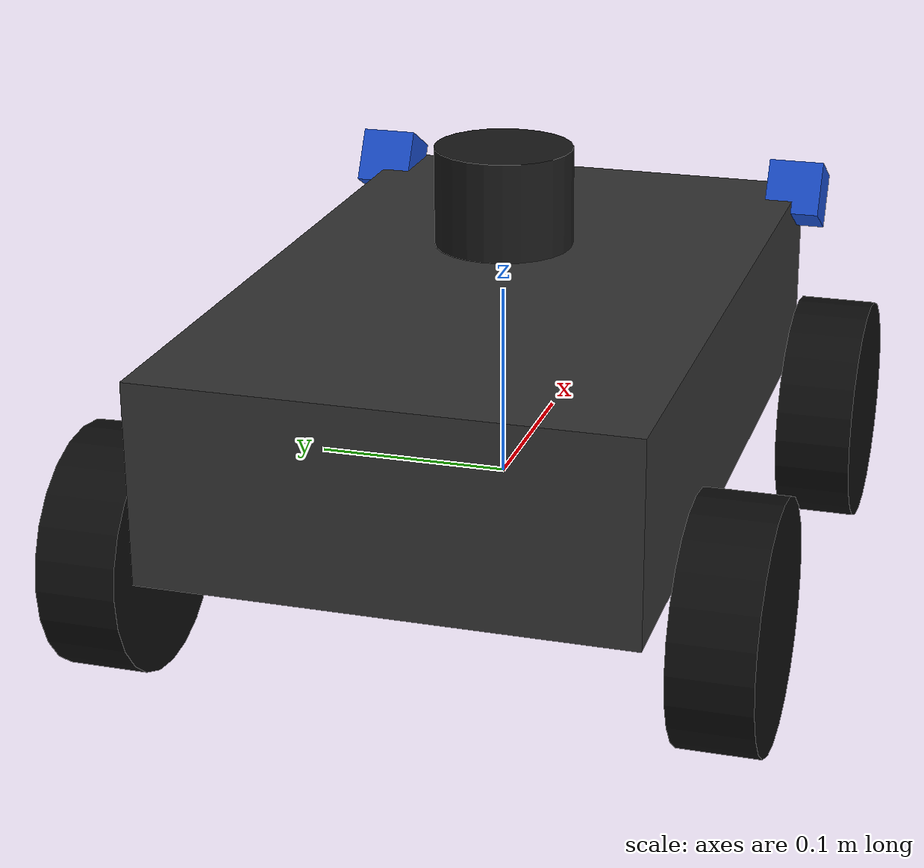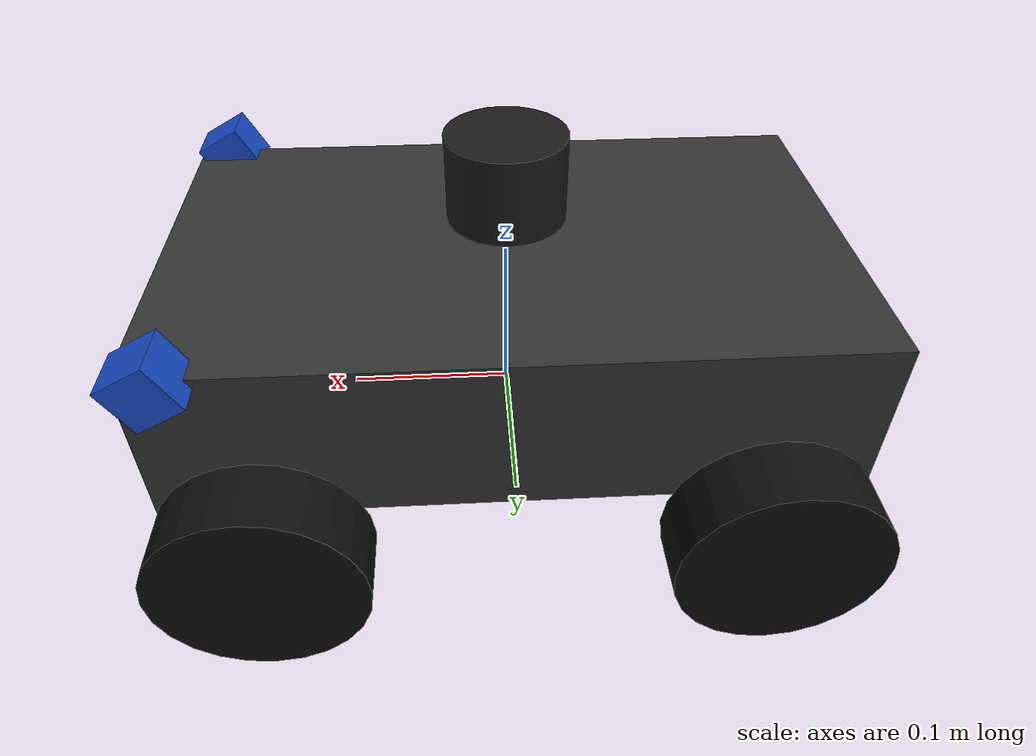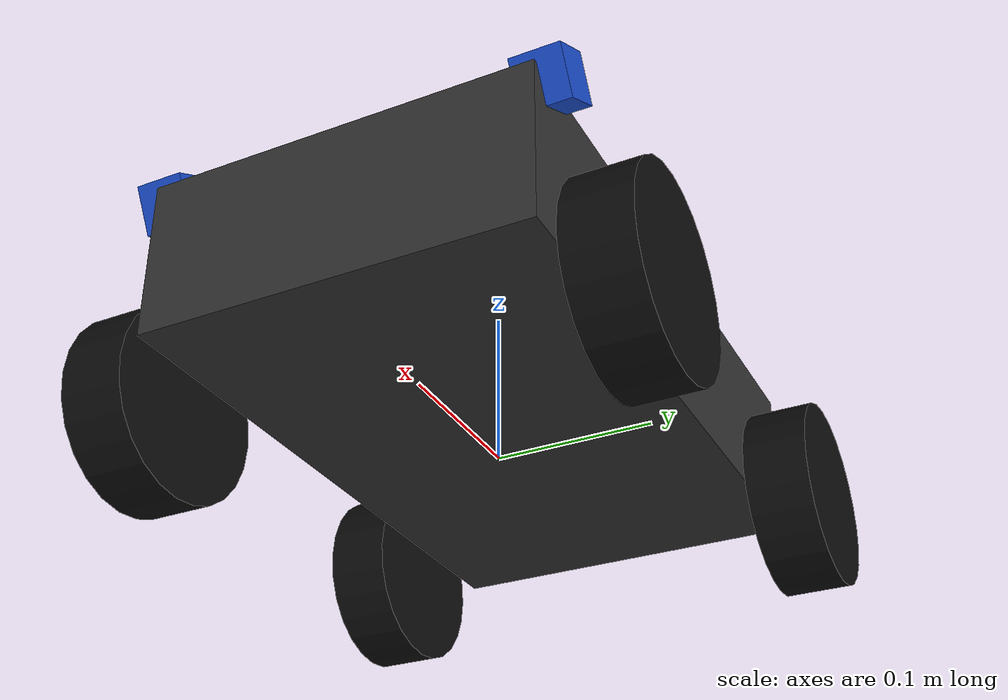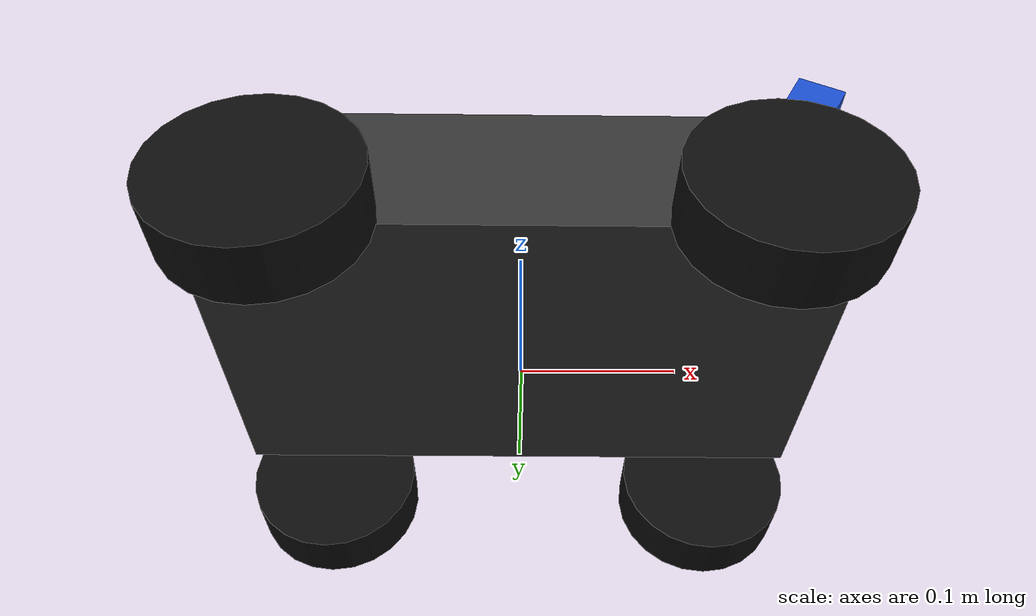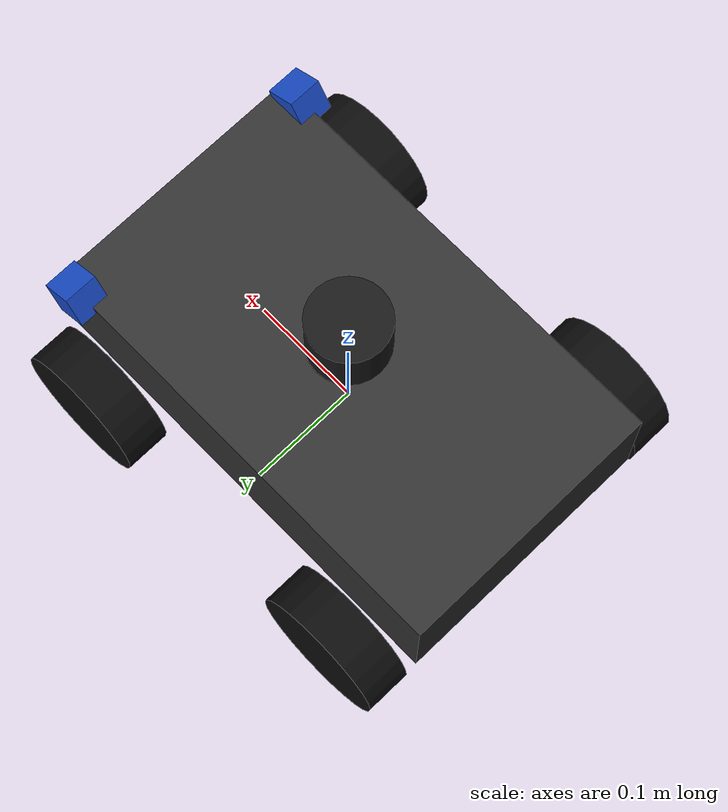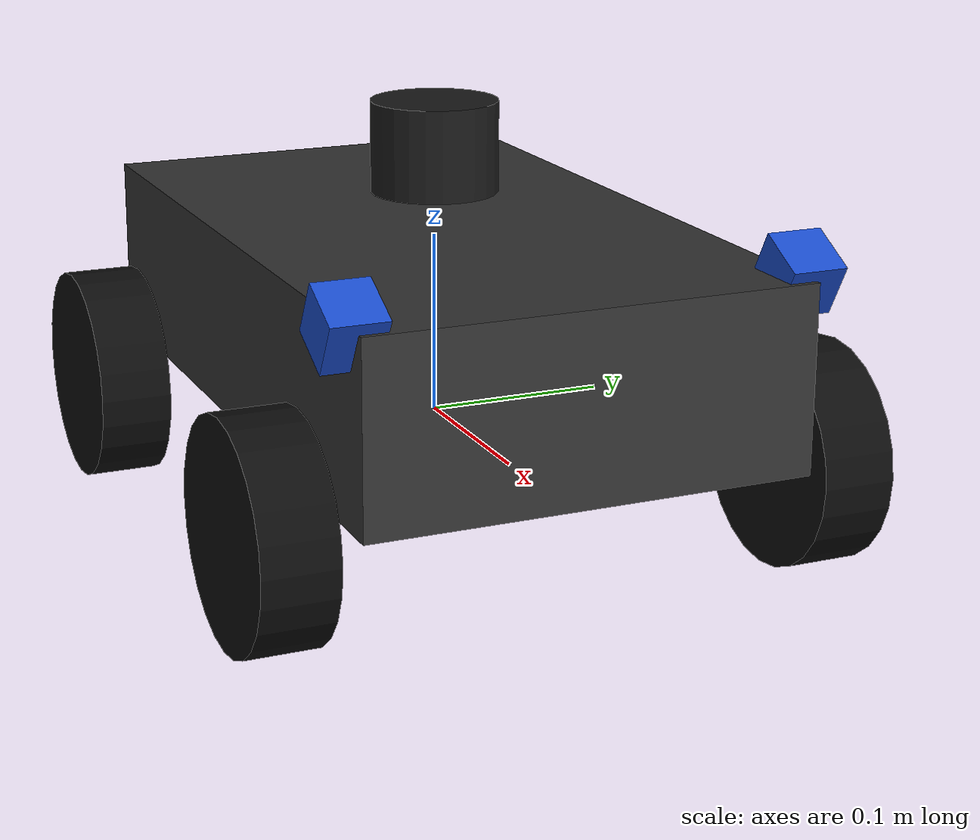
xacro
<?xml version="1.0"?>
<robot name="lane_car" xmlns:xacro="http://www.ros.org/wiki/xacro">

  <!-- ============================ PARAMETERS ============================ -->
  <xacro:property name="chassis_x" value="0.40"/>
  <xacro:property name="chassis_y" value="0.24"/>
  <xacro:property name="chassis_z" value="0.10"/>
  <xacro:property name="chassis_mass" value="4.0"/>
  <xacro:property name="ground_clearance" value="0.06"/>

  <xacro:property name="wheel_radius" value="0.06"/>
  <xacro:property name="wheel_width" value="0.04"/>
  <xacro:property name="wheel_mass" value="0.3"/>
  <xacro:property name="wheel_x_offset" value="0.14"/>
  <xacro:property name="wheel_y_offset" value="${chassis_y/2 + wheel_width/2 + 0.01}"/>

  <xacro:property name="camera_tilt" value="0.5"/>  <!-- rad, ~29 deg pitched down -->

  <!-- ============================ MATERIALS ============================ -->
  <material name="chassis_grey"><color rgba="0.2 0.2 0.2 1"/></material>
  <material name="wheel_black"><color rgba="0.05 0.05 0.05 1"/></material>
  <material name="lidar_dark"><color rgba="0.1 0.1 0.1 1"/></material>
  <material name="cam_blue"><color rgba="0.1 0.3 0.8 1"/></material>

  <!-- ============================ BASE / CHASSIS ============================ -->
  <link name="base_link"/>

  <joint name="base_to_chassis" type="fixed">
    <parent link="base_link"/>
    <child link="chassis_link"/>
    <origin xyz="0 0 ${ground_clearance}" rpy="0 0 0"/>
  </joint>

  <link name="chassis_link">
    <visual>
      <geometry><box size="${chassis_x} ${chassis_y} ${chassis_z}"/></geometry>
      <material name="chassis_grey"/>
    </visual>
    <collision>
      <geometry><box size="${chassis_x} ${chassis_y} ${chassis_z}"/></geometry>
    </collision>
    <inertial>
      <mass value="${chassis_mass}"/>
      <inertia ixx="0.05" ixy="0" ixz="0" iyy="0.08" iyz="0" izz="0.10"/>
    </inertial>
  </link>

  <!-- ============================ WHEEL MACRO ============================ -->
  <xacro:macro name="wheel" params="prefix x_pos y_pos">
    <link name="${prefix}_wheel_link">
      <visual>
        <origin xyz="0 0 0" rpy="1.5708 0 0"/>
        <geometry><cylinder radius="${wheel_radius}" length="${wheel_width}"/></geometry>
        <material name="wheel_black"/>
      </visual>
      <collision>
        <origin xyz="0 0 0" rpy="1.5708 0 0"/>
        <geometry><cylinder radius="${wheel_radius}" length="${wheel_width}"/></geometry>
      </collision>
      <inertial>
        <mass value="${wheel_mass}"/>
        <inertia ixx="0.001" ixy="0" ixz="0" iyy="0.001" iyz="0" izz="0.001"/>
      </inertial>
    </link>

    <joint name="${prefix}_wheel_joint" type="continuous">
      <parent link="chassis_link"/>
      <child link="${prefix}_wheel_link"/>
      <origin xyz="${x_pos} ${y_pos} ${-ground_clearance + wheel_radius*0}" rpy="0 0 0"/>
      <axis xyz="0 1 0"/>
    </joint>
  </xacro:macro>

  <xacro:wheel prefix="front_left"  x_pos="${wheel_x_offset}"  y_pos="${wheel_y_offset}"/>
  <xacro:wheel prefix="front_right" x_pos="${wheel_x_offset}"  y_pos="${-wheel_y_offset}"/>
  <xacro:wheel prefix="rear_left"   x_pos="${-wheel_x_offset}" y_pos="${wheel_y_offset}"/>
  <xacro:wheel prefix="rear_right"  x_pos="${-wheel_x_offset}" y_pos="${-wheel_y_offset}"/>

  <!-- ============================ LIDAR (top, center) ============================ -->
  <joint name="lidar_joint" type="fixed">
    <parent link="chassis_link"/>
    <child link="lidar_link"/>
    <origin xyz="0 0 ${chassis_z/2 + 0.04}" rpy="0 0 0"/>
  </joint>

  <link name="lidar_link">
    <visual>
      <geometry><cylinder radius="0.035" length="0.05"/></geometry>
      <material name="lidar_dark"/>
    </visual>
    <collision>
      <geometry><cylinder radius="0.035" length="0.05"/></geometry>
    </collision>
    <inertial>
      <mass value="0.15"/>
      <inertia ixx="0.0001" ixy="0" ixz="0" iyy="0.0001" iyz="0" izz="0.0001"/>
    </inertial>
  </link>

  <!-- ============================ CAMERA MACRO ============================ -->
  <xacro:macro name="side_camera" params="prefix y_pos yaw">
    <joint name="${prefix}_camera_joint" type="fixed">
      <parent link="chassis_link"/>
      <child link="${prefix}_camera_link"/>
      <origin xyz="${chassis_x/2 - 0.02} ${y_pos} ${chassis_z/2}"
              rpy="0 ${camera_tilt} ${yaw}"/>
    </joint>

    <link name="${prefix}_camera_link">
      <visual>
        <geometry><box size="0.03 0.03 0.03"/></geometry>
        <material name="cam_blue"/>
      </visual>
      <collision>
        <geometry><box size="0.03 0.03 0.03"/></geometry>
      </collision>
      <inertial>
        <mass value="0.05"/>
        <inertia ixx="0.00001" ixy="0" ixz="0" iyy="0.00001" iyz="0" izz="0.00001"/>
      </inertial>
    </link>

    <joint name="${prefix}_camera_optical_joint" type="fixed">
      <parent link="${prefix}_camera_link"/>
      <child link="${prefix}_camera_link_optical"/>
      <origin xyz="0 0 0" rpy="${-1.5708} 0 ${-1.5708}"/>
    </joint>
    <link name="${prefix}_camera_link_optical"/>
  </xacro:macro>

  <!-- yaw=0 -> facing forward along the chassis x-axis, tilted down.
       Left camera on +y, right camera on -y side. -->
  <xacro:side_camera prefix="left_side"  y_pos="${chassis_y/2}"  yaw="0"/>
  <xacro:side_camera prefix="right_side" y_pos="${-chassis_y/2}" yaw="0"/>

  <!-- ============================ GAZEBO HARMONIC: DIFF DRIVE ============================ -->
  <!-- Publishes/subscribes on gz-transport topics (gz.msgs.Twist / gz.msgs.Odometry),
       NOT directly on ROS2 topics. The launch file bridges these via ros_gz_bridge. -->
  <gazebo>
    <plugin filename="gz-sim-diff-drive-system" name="gz::sim::systems::DiffDrive">
      <left_joint>front_left_wheel_joint</left_joint>
      <left_joint>rear_left_wheel_joint</left_joint>
      <right_joint>front_right_wheel_joint</right_joint>
      <right_joint>rear_right_wheel_joint</right_joint>
      <wheel_separation>${2*wheel_y_offset}</wheel_separation>
      <wheel_radius>${wheel_radius}</wheel_radius>
      <max_linear_acceleration>2.0</max_linear_acceleration>
      <topic>cmd_vel</topic>
      <odom_topic>odom</odom_topic>
      <tf_topic>tf</tf_topic>
      <frame_id>odom</frame_id>
      <child_frame_id>base_link</child_frame_id>
      <odom_publish_frequency>30</odom_publish_frequency>
    </plugin>
  </gazebo>

  <!-- ============================ GAZEBO HARMONIC: LIDAR ============================ -->
  <gazebo reference="lidar_link">
    <sensor name="lidar" type="gpu_lidar">
      <pose>0 0 0 0 0 0</pose>
      <topic>scan</topic>
      <update_rate>10</update_rate>
      <lidar>
        <scan>
          <horizontal>
            <samples>360</samples>
            <resolution>1.0</resolution>
            <min_angle>-3.14159</min_angle>
            <max_angle>3.14159</max_angle>
          </horizontal>
        </scan>
        <range>
          <min>0.12</min>
          <max>12.0</max>
          <resolution>0.01</resolution>
        </range>
      </lidar>
      <always_on>true</always_on>
      <visualize>false</visualize>
    </sensor>
  </gazebo>

  <!-- ============================ GAZEBO HARMONIC: CAMERAS ============================ -->
  <xacro:macro name="gazebo_camera" params="prefix topic">
    <gazebo reference="${prefix}_camera_link">
      <sensor name="${prefix}_camera" type="camera">
        <pose>0 0 0 0 0 0</pose>
        <topic>${topic}</topic>
        <update_rate>15</update_rate>
        <camera>
          <horizontal_fov>1.3</horizontal_fov>
          <image>
            <width>640</width>
            <height>480</height>
            <format>R8G8B8</format>
          </image>
          <clip>
            <near>0.05</near>
            <far>15</far>
          </clip>
          <optical_frame_id>${prefix}_camera_link_optical</optical_frame_id>
        </camera>
        <always_on>true</always_on>
        <visualize>false</visualize>
      </sensor>
    </gazebo>
  </xacro:macro>

  <xacro:gazebo_camera prefix="left_side"  topic="lcamera/image_raw"/>
  <xacro:gazebo_camera prefix="right_side" topic="rcamera/image_raw"/>

</robot>
